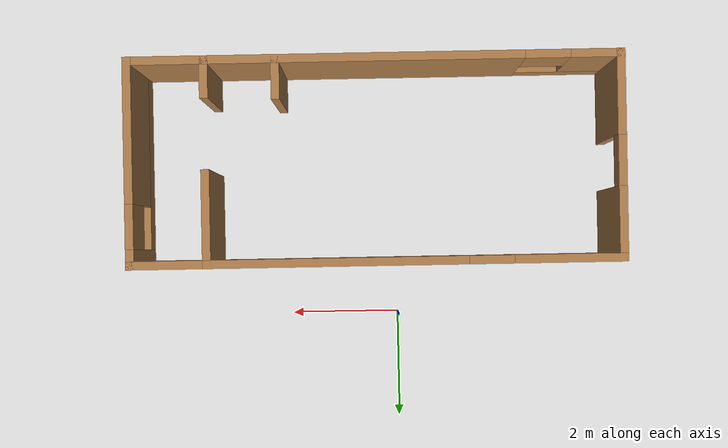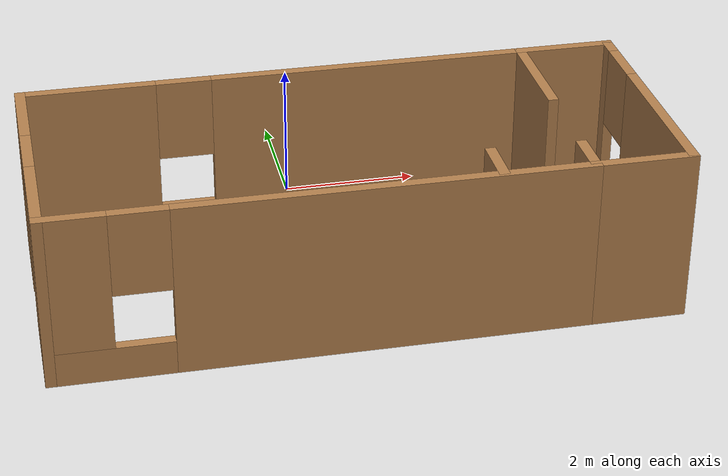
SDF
<?xml version='1.0'?>
<sdf version='1.7'>
  <model name='cafe_world'>
    <pose>0.38 -2.3225 0 0 -0 0</pose>
    <link name='Wall_0'>
      <pose>-0.675 1.3525 0 0 -0 0</pose>
      <visual name='Wall_0_Visual_0'>
        <pose>-2.75059 0 1.25 0 -0 0</pose>
        <geometry>
          <box>
            <size>1.99882 0.15 2.5</size>
          </box>
        </geometry>
        <material>
          <script>
            <uri>file://media/materials/scripts/gazebo.material</uri>
            <name>Gazebo/Wood</name>
          </script>
          <ambient>1 1 1 1</ambient>
        </material>
        <meta>
          <layer>0</layer>
        </meta>
      </visual>
      <collision name='Wall_0_Collision_0'>
        <geometry>
          <box>
            <size>1.99882 0.15 2.5</size>
          </box>
        </geometry>
        <pose>-2.75059 0 1.25 0 -0 0</pose>
      </collision>
      <visual name='Wall_0_Visual_1'>
        <pose>0.999407 0 0.25 0 -0 0</pose>
        <geometry>
          <box>
            <size>5.50119 0.15 0.5</size>
          </box>
        </geometry>
        <material>
          <script>
            <uri>file://media/materials/scripts/gazebo.material</uri>
            <name>Gazebo/Wood</name>
          </script>
          <ambient>1 1 1 1</ambient>
        </material>
        <meta>
          <layer>0</layer>
        </meta>
      </visual>
      <collision name='Wall_0_Collision_1'>
        <geometry>
          <box>
            <size>5.50119 0.15 0.5</size>
          </box>
        </geometry>
        <pose>0.999407 0 0.25 0 -0 0</pose>
      </collision>
      <visual name='Wall_0_Visual_2'>
        <pose>1.39941 0 1.5 0 -0 0</pose>
        <geometry>
          <box>
            <size>4.70118 0.15 2</size>
          </box>
        </geometry>
        <material>
          <script>
            <uri>file://media/materials/scripts/gazebo.material</uri>
            <name>Gazebo/Wood</name>
          </script>
          <ambient>1 1 1 1</ambient>
        </material>
        <meta>
          <layer>0</layer>
        </meta>
      </visual>
      <collision name='Wall_0_Collision_2'>
        <geometry>
          <box>
            <size>4.70118 0.15 2</size>
          </box>
        </geometry>
        <pose>1.39941 0 1.5 0 -0 0</pose>
      </collision>
      <visual name='Wall_0_Visual_3'>
        <pose>-1.35119 0 1.9 0 -0 0</pose>
        <geometry>
          <box>
            <size>0.8 0.15 1.2</size>
          </box>
        </geometry>
        <material>
          <script>
            <uri>file://media/materials/scripts/gazebo.material</uri>
            <name>Gazebo/Wood</name>
          </script>
          <ambient>1 1 1 1</ambient>
        </material>
        <meta>
          <layer>0</layer>
        </meta>
      </visual>
      <collision name='Wall_0_Collision_3'>
        <geometry>
          <box>
            <size>0.8 0.15 1.2</size>
          </box>
        </geometry>
        <pose>-1.35119 0 1.9 0 -0 0</pose>
      </collision>
    </link>
    <link name='Wall_1'>
      <collision name='Wall_1_Collision'>
        <geometry>
          <box>
            <size>1.75 0.15 2.5</size>
          </box>
        </geometry>
        <pose>0 0 1.25 0 -0 0</pose>
      </collision>
      <visual name='Wall_1_Visual'>
        <pose>0 0 1.25 0 -0 0</pose>
        <geometry>
          <box>
            <size>1.75 0.15 2.5</size>
          </box>
        </geometry>
        <material>
          <script>
            <uri>file://media/materials/scripts/gazebo.material</uri>
            <name>Gazebo/Wood</name>
          </script>
          <ambient>1 1 1 1</ambient>
        </material>
        <meta>
          <layer>0</layer>
        </meta>
      </visual>
      <pose>3 0.5525 0 0 -0 -1.5708</pose>
    </link>
    <link name='Wall_12'>
      <collision name='Wall_12_Collision'>
        <geometry>
          <box>
            <size>0.75 0.15 2.5</size>
          </box>
        </geometry>
        <pose>0 0 1.25 0 -0 0</pose>
      </collision>
      <visual name='Wall_12_Visual'>
        <pose>0 0 1.25 0 -0 0</pose>
        <geometry>
          <box>
            <size>0.75 0.15 2.5</size>
          </box>
        </geometry>
        <material>
          <script>
            <uri>file://media/materials/scripts/gazebo.material</uri>
            <name>Gazebo/Wood</name>
          </script>
          <ambient>1 1 1 1</ambient>
        </material>
        <meta>
          <layer>0</layer>
        </meta>
      </visual>
      <pose>1.74 -1.9075 0 0 -0 1.5708</pose>
    </link>
    <link name='Wall_3'>
      <collision name='Wall_3_Collision'>
        <geometry>
          <box>
            <size>1.5 0.15 2.5</size>
          </box>
        </geometry>
        <pose>0 0 1.25 0 -0 0</pose>
      </collision>
      <visual name='Wall_3_Visual'>
        <pose>0 0 1.25 0 -0 0</pose>
        <geometry>
          <box>
            <size>1.5 0.15 2.5</size>
          </box>
        </geometry>
        <material>
          <script>
            <uri>file://media/materials/scripts/gazebo.material</uri>
            <name>Gazebo/Wood</name>
          </script>
          <ambient>1 1 1 1</ambient>
        </material>
        <meta>
          <layer>0</layer>
        </meta>
      </visual>
      <pose>3.675 1.3525 0 0 -0 0</pose>
    </link>
    <link name='Wall_4'>
      <pose>4.35 -0.4475 0 0 -0 -1.5708</pose>
      <visual name='Wall_4_Visual_0'>
        <pose>-1.69169 0 1.25 0 -0 0</pose>
        <geometry>
          <box>
            <size>0.366616 0.15 2.5</size>
          </box>
        </geometry>
        <material>
          <script>
            <uri>file://media/materials/scripts/gazebo.material</uri>
            <name>Gazebo/Wood</name>
          </script>
          <ambient>1 1 1 1</ambient>
        </material>
        <meta>
          <layer>0</layer>
        </meta>
      </visual>
      <collision name='Wall_4_Collision_0'>
        <geometry>
          <box>
            <size>0.366616 0.15 2.5</size>
          </box>
        </geometry>
        <pose>-1.69169 0 1.25 0 -0 0</pose>
      </collision>
      <visual name='Wall_4_Visual_1'>
        <pose>0.183308 0 0.25 0 -0 0</pose>
        <geometry>
          <box>
            <size>3.38338 0.15 0.5</size>
          </box>
        </geometry>
        <material>
          <script>
            <uri>file://media/materials/scripts/gazebo.material</uri>
            <name>Gazebo/Wood</name>
          </script>
          <ambient>1 1 1 1</ambient>
        </material>
        <meta>
          <layer>0</layer>
        </meta>
      </visual>
      <collision name='Wall_4_Collision_1'>
        <geometry>
          <box>
            <size>3.38338 0.15 0.5</size>
          </box>
        </geometry>
        <pose>0.183308 0 0.25 0 -0 0</pose>
      </collision>
      <visual name='Wall_4_Visual_2'>
        <pose>0.583308 0 1.5 0 -0 0</pose>
        <geometry>
          <box>
            <size>2.58338 0.15 2</size>
          </box>
        </geometry>
        <material>
          <script>
            <uri>file://media/materials/scripts/gazebo.material</uri>
            <name>Gazebo/Wood</name>
          </script>
          <ambient>1 1 1 1</ambient>
        </material>
        <meta>
          <layer>0</layer>
        </meta>
      </visual>
      <collision name='Wall_4_Collision_2'>
        <geometry>
          <box>
            <size>2.58338 0.15 2</size>
          </box>
        </geometry>
        <pose>0.583308 0 1.5 0 -0 0</pose>
      </collision>
      <visual name='Wall_4_Visual_3'>
        <pose>-1.10838 0 1.9 0 -0 0</pose>
        <geometry>
          <box>
            <size>0.8 0.15 1.2</size>
          </box>
        </geometry>
        <material>
          <script>
            <uri>file://media/materials/scripts/gazebo.material</uri>
            <name>Gazebo/Wood</name>
          </script>
          <ambient>1 1 1 1</ambient>
        </material>
        <meta>
          <layer>0</layer>
        </meta>
      </visual>
      <collision name='Wall_4_Collision_3'>
        <geometry>
          <box>
            <size>0.8 0.15 1.2</size>
          </box>
        </geometry>
        <pose>-1.10838 0 1.9 0 -0 0</pose>
      </collision>
    </link>
    <link name='Wall_5'>
      <collision name='Wall_5_Collision'>
        <geometry>
          <box>
            <size>1.5 0.15 2.5</size>
          </box>
        </geometry>
        <pose>0 0 1.25 0 -0 0</pose>
      </collision>
      <visual name='Wall_5_Visual'>
        <pose>0 0 1.25 0 -0 0</pose>
        <geometry>
          <box>
            <size>1.5 0.15 2.5</size>
          </box>
        </geometry>
        <material>
          <script>
            <uri>file://media/materials/scripts/gazebo.material</uri>
            <name>Gazebo/Wood</name>
          </script>
          <ambient>1 1 1 1</ambient>
        </material>
        <meta>
          <layer>0</layer>
        </meta>
      </visual>
      <pose>3.675 -2.2475 0 0 -0 3.14159</pose>
    </link>
    <link name='Wall_6'>
      <collision name='Wall_6_Collision'>
        <geometry>
          <box>
            <size>0.75 0.15 2.5</size>
          </box>
        </geometry>
        <pose>0 0 1.25 0 -0 0</pose>
      </collision>
      <visual name='Wall_6_Visual'>
        <pose>0 0 1.25 0 -0 0</pose>
        <geometry>
          <box>
            <size>0.75 0.15 2.5</size>
          </box>
        </geometry>
        <material>
          <script>
            <uri>file://media/materials/scripts/gazebo.material</uri>
            <name>Gazebo/Wood</name>
          </script>
          <ambient>1 1 1 1</ambient>
        </material>
        <meta>
          <layer>0</layer>
        </meta>
      </visual>
      <pose>3 -1.9475 0 0 -0 1.5708</pose>
    </link>
    <link name='Wall_8'>
      <pose>-0.675 -2.2475 0 0 -0 3.14159</pose>
      <visual name='Wall_8_Visual_0'>
        <pose>-0.87702 0 1.25 0 -0 0</pose>
        <geometry>
          <box>
            <size>5.74596 0.15 2.5</size>
          </box>
        </geometry>
        <material>
          <script>
            <uri>file://media/materials/scripts/gazebo.material</uri>
            <name>Gazebo/Wood</name>
          </script>
          <ambient>1 1 1 1</ambient>
        </material>
        <meta>
          <layer>0</layer>
        </meta>
      </visual>
      <collision name='Wall_8_Collision_0'>
        <geometry>
          <box>
            <size>5.74596 0.15 2.5</size>
          </box>
        </geometry>
        <pose>-0.87702 0 1.25 0 -0 0</pose>
      </collision>
      <visual name='Wall_8_Visual_1'>
        <pose>2.87298 0 0.25 0 -0 0</pose>
        <geometry>
          <box>
            <size>1.75404 0.15 0.5</size>
          </box>
        </geometry>
        <material>
          <script>
            <uri>file://media/materials/scripts/gazebo.material</uri>
            <name>Gazebo/Wood</name>
          </script>
          <ambient>1 1 1 1</ambient>
        </material>
        <meta>
          <layer>0</layer>
        </meta>
      </visual>
      <collision name='Wall_8_Collision_1'>
        <geometry>
          <box>
            <size>1.75404 0.15 0.5</size>
          </box>
        </geometry>
        <pose>2.87298 0 0.25 0 -0 0</pose>
      </collision>
      <visual name='Wall_8_Visual_2'>
        <pose>3.27298 0 1.5 0 -0 0</pose>
        <geometry>
          <box>
            <size>0.95404 0.15 2</size>
          </box>
        </geometry>
        <material>
          <script>
            <uri>file://media/materials/scripts/gazebo.material</uri>
            <name>Gazebo/Wood</name>
          </script>
          <ambient>1 1 1 1</ambient>
        </material>
        <meta>
          <layer>0</layer>
        </meta>
      </visual>
      <collision name='Wall_8_Collision_2'>
        <geometry>
          <box>
            <size>0.95404 0.15 2</size>
          </box>
        </geometry>
        <pose>3.27298 0 1.5 0 -0 0</pose>
      </collision>
      <visual name='Wall_8_Visual_3'>
        <pose>2.39596 0 1.9 0 -0 0</pose>
        <geometry>
          <box>
            <size>0.8 0.15 1.2</size>
          </box>
        </geometry>
        <material>
          <script>
            <uri>file://media/materials/scripts/gazebo.material</uri>
            <name>Gazebo/Wood</name>
          </script>
          <ambient>1 1 1 1</ambient>
        </material>
        <meta>
          <layer>0</layer>
        </meta>
      </visual>
      <collision name='Wall_8_Collision_3'>
        <geometry>
          <box>
            <size>0.8 0.15 1.2</size>
          </box>
        </geometry>
        <pose>2.39596 0 1.9 0 -0 0</pose>
      </collision>
    </link>
    <link name='Wall_9'>
      <pose>-4.35 -0.4475 0 0 -0 1.5708</pose>
      <visual name='Wall_9_Visual_0'>
        <pose>-1.11747 0 1.25 0 -0 0</pose>
        <geometry>
          <box>
            <size>1.51506 0.15 2.5</size>
          </box>
        </geometry>
        <material>
          <script>
            <uri>file://media/materials/scripts/gazebo.material</uri>
            <name>Gazebo/Wood</name>
          </script>
          <ambient>1 1 1 1</ambient>
        </material>
        <meta>
          <layer>0</layer>
        </meta>
      </visual>
      <collision name='Wall_9_Collision_0'>
        <geometry>
          <box>
            <size>1.51506 0.15 2.5</size>
          </box>
        </geometry>
        <pose>-1.11747 0 1.25 0 -0 0</pose>
      </collision>
      <visual name='Wall_9_Visual_1'>
        <pose>1.20753 0 1.25 0 -0 0</pose>
        <geometry>
          <box>
            <size>1.33494 0.15 2.5</size>
          </box>
        </geometry>
        <material>
          <script>
            <uri>file://media/materials/scripts/gazebo.material</uri>
            <name>Gazebo/Wood</name>
          </script>
          <ambient>1 1 1 1</ambient>
        </material>
        <meta>
          <layer>0</layer>
        </meta>
      </visual>
      <collision name='Wall_9_Collision_1'>
        <geometry>
          <box>
            <size>1.33494 0.15 2.5</size>
          </box>
        </geometry>
        <pose>1.20753 0 1.25 0 -0 0</pose>
      </collision>
      <visual name='Wall_9_Visual_2'>
        <pose>0.090059 0 2.25 0 -0 0</pose>
        <geometry>
          <box>
            <size>0.9 0.15 0.5</size>
          </box>
        </geometry>
        <material>
          <script>
            <uri>file://media/materials/scripts/gazebo.material</uri>
            <name>Gazebo/Wood</name>
          </script>
          <ambient>1 1 1 1</ambient>
        </material>
        <meta>
          <layer>0</layer>
        </meta>
      </visual>
      <collision name='Wall_9_Collision_2'>
        <geometry>
          <box>
            <size>0.9 0.15 0.5</size>
          </box>
        </geometry>
        <pose>0.090059 0 2.25 0 -0 0</pose>
      </collision>
    </link>
    <static>1</static>
  </model>
</sdf>
